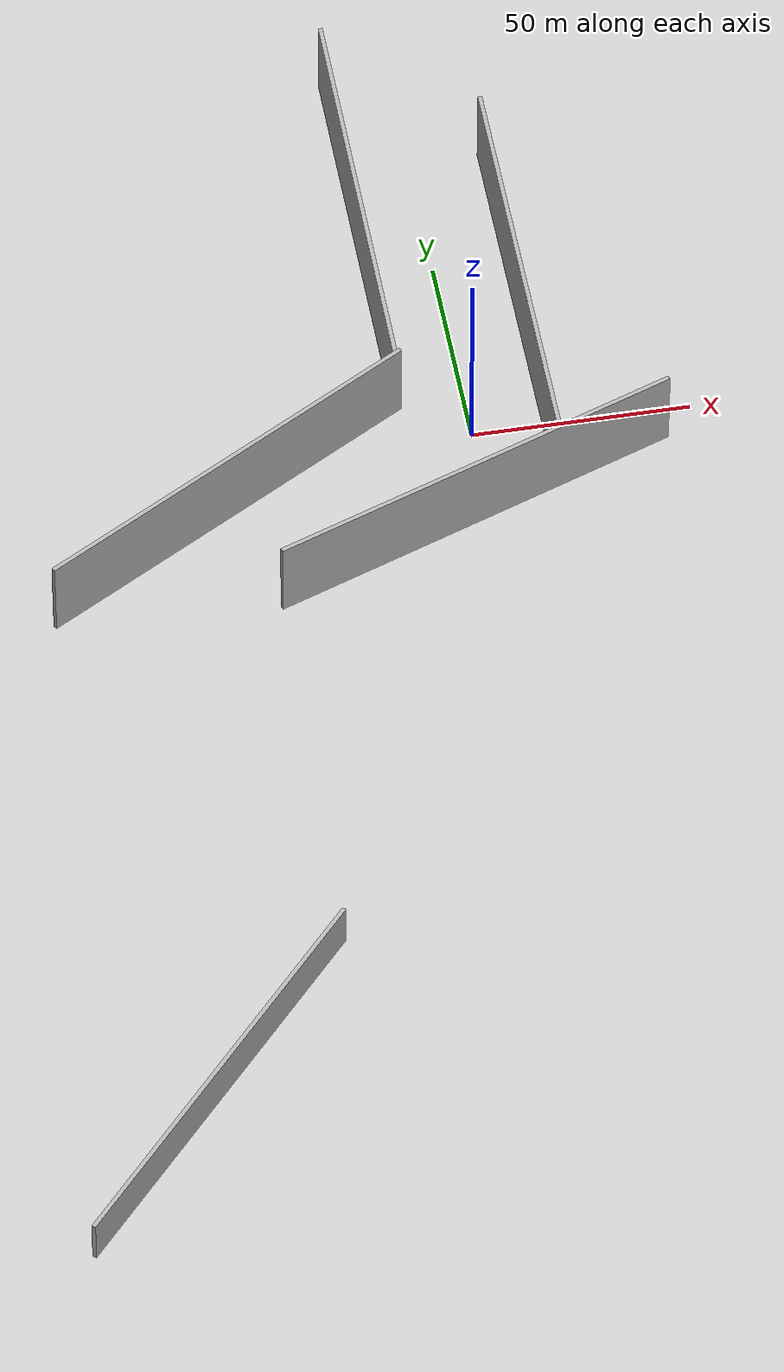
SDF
<sdf version="1.9">
 <world name="empty">
  <physics name="1ms" type="ignored">
   <max_step_size>0.001</max_step_size>
   <real_time_factor>1</real_time_factor>
   <real_time_update_rate>1000</real_time_update_rate>
  </physics>
  <plugin name="gz::sim::systems::Physics" filename="ignition-gazebo-physics-system"/>
  <plugin name="gz::sim::systems::UserCommands" filename="ignition-gazebo-user-commands-system"/>
  <plugin name="gz::sim::systems::SceneBroadcaster" filename="ignition-gazebo-scene-broadcaster-system"/>
  <plugin name="gz::sim::systems::Contact" filename="ignition-gazebo-contact-system"/>
  <gravity>0 0 -9.8</gravity>
  <magnetic_field>6e-06 2.3e-05 -4.2e-05</magnetic_field>
  <atmosphere type="adiabatic"/>
  <scene><ambient>0.4 0.4 0.4 1</ambient><background>0.7 0.7 0.7 1</background><shadows>true</shadows></scene>
  <model name="ground_plane">
   <static>true</static>
   <link name="link">
    <collision name="collision">
     <geometry><plane><normal>0 0 1</normal><size>1000 1000</size></plane></geometry>
     <surface>
      <friction><ode><mu>1</mu><mu2>1</mu2><fdir1>0 0 1</fdir1><slip1>0</slip1><slip2>0</slip2></ode></friction>
     </surface>
    </collision>
    <visual name="visual">
     <geometry><plane><normal>0 0 1</normal><size>100 100</size></plane></geometry>
     <material>
      <ambient>0.8 0.8 0.8 1</ambient>
      <diffuse>0.8 0.8 0.8 1</diffuse>
      <specular>0.8 0.8 0.8 1</specular>
     </material>
    </visual>
    <inertial>
     <mass>1</mass>
     <inertia><ixx>1</ixx><ixy>0</ixy><ixz>0</ixz><iyy>1</iyy><iyz>0</iyz><izz>1</izz></inertia>
    </inertial>
   </link>
  </model>
  <model name="box1">
   <pose>-85.6717 -173.526 0.525908 0 0 -0.727124</pose>
   <link name="box_link">
    <inertial>
     <inertia><ixx>0.16666</ixx><ixy>0</ixy><ixz>0</ixz><iyy>0.16666</iyy><iyz>0</iyz><izz>0.16666</izz></inertia>
     <mass>1</mass>
     <pose>0 0 10 0 -0 0</pose>
    </inertial>
    <collision name="box_collision"><geometry><box><size>1 100 20</size></box></geometry></collision>
    <visual name="box_visual">
     <geometry><box><size>1 100 20</size></box></geometry>
     <material>
      <ambient>0.3 0.3 0.3 1</ambient>
      <diffuse>0.7 0.7 0.7 1</diffuse>
      <specular>1 1 1 1</specular>
     </material>
    </visual>
   </link>
   <static>false</static>
  </model>
  <model name="box2">
   <pose>-15.633 60.3132 9.99996 0 -3.5e-05 -5.3e-05</pose>
   <link name="box_link">
    <inertial>
     <inertia><ixx>0.16666</ixx><ixy>0</ixy><ixz>0</ixz><iyy>0.16666</iyy><iyz>0</iyz><izz>0.16666</izz></inertia>
     <mass>1</mass>
    </inertial>
    <collision name="box_collision"><geometry><box><size>1 100 20</size></box></geometry></collision>
    <visual name="box_visual">
     <geometry><box><size>1 100 20</size></box></geometry>
     <material>
      <ambient>0.3 0.3 0.3 1</ambient>
      <diffuse>0.7 0.7 0.7 1</diffuse>
      <specular>1 1 1 1</specular>
     </material>
    </visual>
   </link>
   <static>false</static>
  </model>
  <model name="box3">
   <pose>-57.6012 -14.1208 10.0001 -0 -0.000435 2.09714</pose>
   <link name="box_link">
    <inertial>
     <inertia><ixx>0.16666</ixx><ixy>0</ixy><ixz>0</ixz><iyy>0.16666</iyy><iyz>0</iyz><izz>0.16666</izz></inertia>
     <mass>1</mass>
    </inertial>
    <collision name="box_collision"><geometry><box><size>1 100 20</size></box></geometry></collision>
    <visual name="box_visual">
     <geometry><box><size>1 100 20</size></box></geometry>
     <material>
      <ambient>0.3 0.3 0.3 1</ambient>
      <diffuse>0.7 0.7 0.7 1</diffuse>
      <specular>1 1 1 1</specular>
     </material>
    </visual>
   </link>
   <static>false</static>
  </model>
  <model name="box4">
   <pose>16.7669 33.2162 9.99996 0 -1.9e-05 -6.1e-05</pose>
   <link name="box_link">
    <inertial>
     <inertia><ixx>0.16666</ixx><ixy>0</ixy><ixz>0</ixz><iyy>0.16666</iyy><iyz>0</iyz><izz>0.16666</izz></inertia>
     <mass>1</mass>
    </inertial>
    <collision name="box_collision"><geometry><box><size>1 100 20</size></box></geometry></collision>
    <visual name="box_visual">
     <geometry><box><size>1 100 20</size></box></geometry>
     <material>
      <ambient>0.3 0.3 0.3 1</ambient>
      <diffuse>0.7 0.7 0.7 1</diffuse>
      <specular>1 1 1 1</specular>
     </material>
    </visual>
   </link>
   <static>false</static>
  </model>
  <model name="box5">
   <pose>-3.4323 -24.8977 10.0002 -0 0.000453 -1.21514</pose>
   <link name="box_link">
    <inertial>
     <inertia><ixx>0.16666</ixx><ixy>0</ixy><ixz>0</ixz><iyy>0.16666</iyy><iyz>0</iyz><izz>0.16666</izz></inertia>
     <mass>1</mass>
    </inertial>
    <collision name="box_collision"><geometry><box><size>1 100 20</size></box></geometry></collision>
    <visual name="box_visual">
     <geometry><box><size>1 100 20</size></box></geometry>
     <material>
      <ambient>0.3 0.3 0.3 1</ambient>
      <diffuse>0.7 0.7 0.7 1</diffuse>
      <specular>1 1 1 1</specular>
     </material>
    </visual>
   </link>
   <static>false</static>
  </model>
  <light name="sun" type="directional">
   <pose>0 0 10 0 -0 0</pose>
   <intensity>1</intensity>
   <direction>-0.5 0.1 -0.9</direction>
   <diffuse>0.8 0.8 0.8 1</diffuse>
   <specular>0.2 0.2 0.2 1</specular>
   <attenuation>
    <range>1000</range>
    <linear>0.01</linear>
    <constant>0.90000000000000002</constant>
    <quadratic>0.001</quadratic>
   </attenuation>
   <spot><inner_angle>0</inner_angle><outer_angle>0</outer_angle><falloff>0</falloff></spot>
  </light>
 </world>
</sdf>
